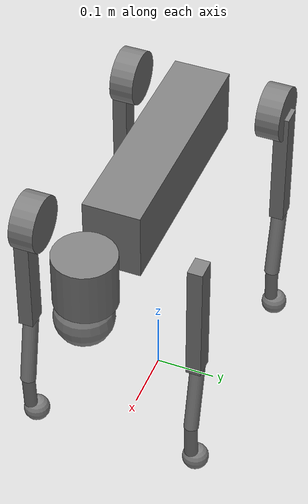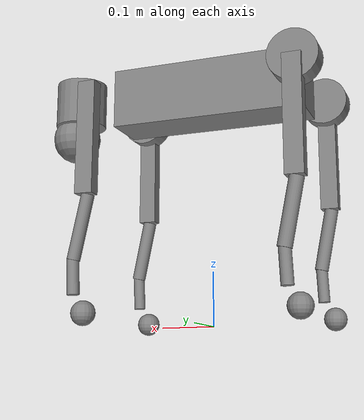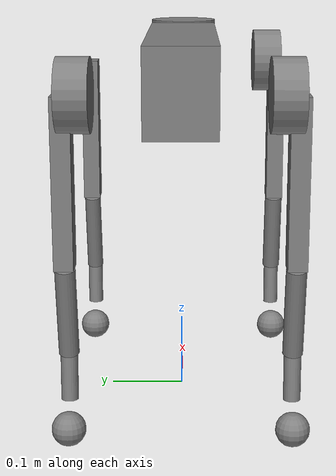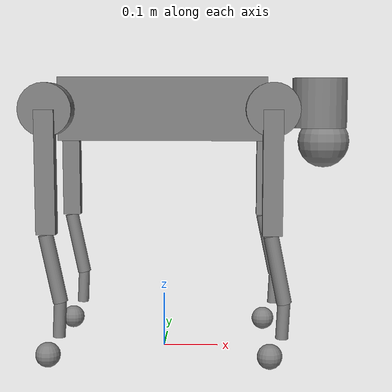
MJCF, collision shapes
<mujoco model="go2">
    <compiler angle="radian" meshdir="assets" autolimits="true"/>

    <option cone="elliptic" impratio="100"/>

    <default>
        <default class="go2">
        <geom friction="0.6" contype="0" conaffinity="0" type="mesh"/>
        <joint axis="0 1 0" damping="0.1" armature="0.01" frictionloss="0.2"/>
        <motor ctrlrange="-23.7 23.7" forcerange="-23.7 23.7"/>
        <default class="go2/abduction">
            <joint axis="1 0 0" range="-1.0472 1.0472"/>
        </default>
        <default class="go2/hip">
            <default class="go2/front_hip">
            <joint range="-1.5708 3.4907"/>
            </default>
            <default class="go2/back_hip">
            <joint range="-0.5236 4.5379"/>
            </default>
        </default>
        <default class="go2/knee">
            <joint range="-2.7227 -0.83776"/>
            <motor ctrlrange="-45.43 45.43" forcerange="-45.43 45.43"/>
        </default>
        <default class="go2/foot">
            <site pos="-0.002 0 -0.213"/>
        </default>
        <default class="go2/collision">
            <geom group="3" contype="0" conaffinity="1"/>
            <default class="go2/collision/foot">
            <geom type="sphere" size="0.022" pos="-0.002 0 -0.213" solimp="0.9 .95 0.022" condim="6" friction="0.8 0.02 0.01"/>
            </default>
        </default>
        </default>
    </default>

    <asset>
        <material name="metal" rgba=".9 .95 .95 1"/>
        <material name="black" rgba="0 0 0 1"/>
        <material name="white" rgba="1 1 1 1"/>
        <material name="gray" rgba="0.671705 0.692426 0.774270 1"/>
        <mesh file="base_0.obj"/>
        <mesh file="base_1.obj"/>
        <mesh file="base_2.obj"/>
        <mesh file="base_3.obj"/>
        <mesh file="base_4.obj"/>
        <mesh file="hip_0.obj"/>
        <mesh file="hip_1.obj"/>
        <mesh file="thigh_0.obj"/>
        <mesh file="thigh_1.obj"/>
        <mesh file="thigh_mirror_0.obj"/>
        <mesh file="thigh_mirror_1.obj"/>
        <mesh file="calf_0.obj"/>
        <mesh file="calf_1.obj"/>
        <mesh file="calf_mirror_0.obj"/>
        <mesh file="calf_mirror_1.obj"/>
        <mesh file="foot.obj"/>
    </asset>

    <worldbody>
        <body name="base_link" pos="0 0 0.445" childclass="go2">
            <inertial pos="0.021112 0 -0.005366" quat="-0.000543471 0.713435 -0.00173769 0.700719"
                mass="6.921"
                diaginertia="0.107027 0.0980771 0.0244531"/>
            <freejoint/>
            <geom mesh="base_0" material="black" class="go2"/>
            <geom mesh="base_1" material="black" class="go2"/>
            <geom mesh="base_2" material="black" class="go2"/>
            <geom mesh="base_3" material="white" class="go2"/>
            <geom mesh="base_4" material="gray" class="go2"/>
            <geom size="0.1881 0.04675 0.057" type="box" class="go2/collision"/>
            <geom size="0.05 0.045" pos="0.285 0 0.01" type="cylinder" class="go2/collision"/>
            <geom size="0.047" pos="0.293 0 -0.06" type="sphere" class="go2/collision"/>
            <site name="imu" pos="-0.02557 0 0.04232"/>
            <body name="front_right_hip" pos="0.1934 -0.0465 0">
                <inertial pos="-0.0054 -0.00194 -0.000105" quat="0.498237 0.505462 0.499245 0.497014"
                    mass="0.678"
                    diaginertia="0.00088403 0.000596003 0.000479967"/>
                <joint name="front_right_hip_joint" class="go2/abduction"/>
                <geom mesh="hip_0" material="metal" class="go2" quat="4.63268e-05 1 0 0"/>
                <geom mesh="hip_1" material="gray" class="go2" quat="4.63268e-05 1 0 0"/>
                <geom size="0.046 0.02" pos="0 -0.08 0" quat="0.707107 0.707107 0 0" type="cylinder"
                    class="go2/collision"/>
                <body name="front_right_thigh" pos="0 -0.0955 0">
                    <inertial pos="-0.00374 0.0223 -0.0327" quat="0.551623 -0.0200632 0.0847635 0.829533"
                        mass="1.152"
                        diaginertia="0.00594973 0.00584149 0.000878787"/>
                    <joint name="front_right_thigh_joint" class="go2/front_hip"/>
                    <geom mesh="thigh_mirror_0" material="metal" class="go2"/>
                    <geom mesh="thigh_mirror_1" material="gray" class="go2"/>
                    <geom size="0.1065 0.01225 0.017" pos="0 0 -0.1065" quat="0.707107 0 0.707107 0"
                        type="box" class="go2/collision"/>
                    <body name="front_right_calf" pos="0 0 -0.213">
                        <inertial pos="0.00629595 0.000622121 -0.141417"
                        quat="0.703508 -0.00450087 0.00154099 0.710672"
                        mass="0.241352" diaginertia="0.0014901 0.00146356 5.31397e-05"/>
                        <joint name="front_right_calf_joint" class="go2/knee"/>
                        <geom mesh="calf_mirror_0" material="gray" class="go2"/>
                        <geom mesh="calf_mirror_1" material="black" class="go2"/>
                        <geom size="0.013 0.06" pos="0.01 0 -0.06" quat="0.995004 0 -0.0998334 0"
                            type="cylinder" class="go2/collision"/>
                        <geom size="0.011 0.0325" pos="0.02 0 -0.148" quat="0.999688 0 0.0249974 0"
                            type="cylinder" class="go2/collision"/>
                        <geom pos="0 0 -0.213" mesh="foot" class="go2" material="black"/>
                        <geom name="front_right" class="go2/collision/foot"/>
                        <site name="front_right_foot" class="go2/foot"/>
                    </body>
                </body>
            </body>
            <body name="front_left_hip" pos="0.1934 0.0465 0">
                <inertial pos="-0.0054 0.00194 -0.000105" quat="0.497014 0.499245 0.505462 0.498237"
                mass="0.678"
                diaginertia="0.00088403 0.000596003 0.000479967"/>
                <joint name="front_left_hip_joint" class="go2/abduction"/>
                <geom mesh="hip_0" material="metal" class="go2"/>
                <geom mesh="hip_1" material="gray" class="go2"/>
                <body name="front_left_thigh" pos="0 0.0955 0">
                    <inertial pos="-0.00374 -0.0223 -0.0327" quat="0.829533 0.0847635 -0.0200632 0.551623"
                        mass="1.152"
                        diaginertia="0.00594973 0.00584149 0.000878787"/>
                    <joint name="front_left_thigh_joint" class="go2/front_hip"/>
                    <geom mesh="thigh_0" material="metal" class="go2"/>
                    <geom mesh="thigh_1" material="gray" class="go2"/>
                    <geom size="0.1065 0.01225 0.017" pos="0 0 -0.1065" quat="0.707107 0 0.707107 0"
                        type="box" class="go2/collision"/>
                    <body name="front_left_calf" pos="0 0 -0.213">
                        <inertial pos="0.00629595 -0.000622121 -0.141417"
                        quat="0.710672 0.00154099 -0.00450087 0.703508"
                        mass="0.241352" diaginertia="0.0014901 0.00146356 5.31397e-05"/>
                        <joint name="front_left_calf_joint" class="go2/knee"/>
                        <geom mesh="calf_0" material="gray" class="go2"/>
                        <geom mesh="calf_1" material="black" class="go2"/>
                        <geom size="0.012 0.06" pos="0.008 0 -0.06" quat="0.994493 0 -0.104807 0"
                            type="cylinder" class="go2/collision"/>
                        <geom size="0.011 0.0325" pos="0.02 0 -0.148" quat="0.999688 0 0.0249974 0"
                            type="cylinder" class="go2/collision"/>
                        <geom pos="0 0 -0.213" mesh="foot" class="go2" material="black"/>
                        <geom name="front_left" class="go2/collision/foot"/>
                        <site name="front_left_foot" class="go2/foot"/>
                    </body>
                </body>
            </body>
            <body name="hind_right_hip" pos="-0.1934 -0.0465 0">
                <inertial pos="0.0054 -0.00194 -0.000105" quat="0.499245 0.497014 0.498237 0.505462"
                mass="0.678"
                diaginertia="0.00088403 0.000596003 0.000479967"/>
                <joint name="hind_right_hip_joint" class="go2/abduction"/>
                <geom mesh="hip_0" material="metal" class="go2" quat="2.14617e-09 4.63268e-05 4.63268e-05 -1"/>
                <geom mesh="hip_1" material="gray" class="go2" quat="2.14617e-09 4.63268e-05 4.63268e-05 -1"/>
                <geom size="0.046 0.02" pos="0 -0.08 0" quat="0.707107 0.707107 0 0" type="cylinder"
                    class="go2/collision"/>
                <body name="hind_right_thigh" pos="0 -0.0955 0">
                    <inertial pos="-0.00374 0.0223 -0.0327" quat="0.551623 -0.0200632 0.0847635 0.829533"
                        mass="1.152"
                        diaginertia="0.00594973 0.00584149 0.000878787"/>
                    <joint name="hind_right_thigh_joint" class="go2/back_hip"/>
                    <geom mesh="thigh_mirror_0" material="metal" class="go2"/>
                    <geom mesh="thigh_mirror_1" material="gray" class="go2"/>
                    <geom size="0.1065 0.01225 0.017" pos="0 0 -0.1065" quat="0.707107 0 0.707107 0"
                        type="box" class="go2/collision"/>
                    <body name="hind_right_calf" pos="0 0 -0.213">
                        <inertial pos="0.00629595 0.000622121 -0.141417"
                        quat="0.703508 -0.00450087 0.00154099 0.710672"
                        mass="0.241352" diaginertia="0.0014901 0.00146356 5.31397e-05"/>
                        <joint name="hind_right_calf_joint" class="go2/knee"/>
                        <geom mesh="calf_mirror_0" material="gray" class="go2"/>
                        <geom mesh="calf_mirror_1" material="black" class="go2"/>
                        <geom size="0.013 0.06" pos="0.01 0 -0.06" quat="0.995004 0 -0.0998334 0"
                            type="cylinder" class="go2/collision"/>
                        <geom size="0.011 0.0325" pos="0.02 0 -0.148" quat="0.999688 0 0.0249974 0"
                            type="cylinder" class="go2/collision"/>
                        <geom pos="0 0 -0.213" mesh="foot" class="go2" material="black"/>
                        <geom name="hind_right" class="go2/collision/foot"/>
                        <site name="hind_right_foot" class="go2/foot"/>
                    </body>
                </body>
            </body>
            <body name="hind_left_hip" pos="-0.1934 0.0465 0">
                <inertial pos="0.0054 0.00194 -0.000105" quat="0.505462 0.498237 0.497014 0.499245"
                mass="0.678"
                diaginertia="0.00088403 0.000596003 0.000479967"/>
                <joint name="hind_left_hip_joint" class="go2/abduction"/>
                <geom mesh="hip_0" material="metal" class="go2" quat="4.63268e-05 0 1 0"/>
                <geom mesh="hip_1" material="gray" class="go2" quat="4.63268e-05 0 1 0"/>
                <geom size="0.046 0.02" pos="0 0.08 0" quat="0.707107 0.707107 0 0" type="cylinder"
                    class="go2/collision"/>
                <body name="hind_left_thigh" pos="0 0.0955 0">
                    <inertial pos="-0.00374 -0.0223 -0.0327" quat="0.829533 0.0847635 -0.0200632 0.551623"
                        mass="1.152"
                        diaginertia="0.00594973 0.00584149 0.000878787"/>
                    <joint name="hind_left_thigh_joint" class="go2/back_hip"/>
                    <geom mesh="thigh_0" material="metal" class="go2"/>
                    <geom mesh="thigh_1" material="gray" class="go2"/>
                    <geom size="0.1065 0.01225 0.017" pos="0 0 -0.1065" quat="0.707107 0 0.707107 0"
                        type="box" class="go2/collision"/>
                    <body name="hind_left_calf" pos="0 0 -0.213">
                        <inertial pos="0.00629595 -0.000622121 -0.141417"
                            quat="0.710672 0.00154099 -0.00450087 0.703508"
                            mass="0.241352" diaginertia="0.0014901 0.00146356 5.31397e-05"/>
                        <joint name="hind_left_calf_joint" class="go2/knee"/>
                        <geom mesh="calf_0" material="gray" class="go2"/>
                        <geom mesh="calf_1" material="black" class="go2"/>
                        <geom size="0.013 0.06" pos="0.01 0 -0.06" quat="0.995004 0 -0.0998334 0"
                            type="cylinder" class="go2/collision"/>
                        <geom size="0.011 0.0325" pos="0.02 0 -0.148" quat="0.999688 0 0.0249974 0"
                            type="cylinder" class="go2/collision"/>
                        <geom pos="0 0 -0.213" mesh="foot" class="go2" material="black"/>
                        <geom name="hind_left" class="go2/collision/foot"/>
                        <site name="hind_left_foot" class="go2/foot"/>
                    </body>
                </body>
            </body>
        </body>
    </worldbody>

    <actuator>
        <motor class="go2/abduction" name="front_right_hip" joint="front_right_hip_joint"/>
        <motor class="go2/hip" name="front_right_thigh" joint="front_right_thigh_joint"/>
        <motor class="go2/knee" name="front_right_calf" joint="front_right_calf_joint"/>
        <motor class="go2/abduction" name="front_left_hip" joint="front_left_hip_joint"/>
        <motor class="go2/hip" name="front_left_thigh" joint="front_left_thigh_joint"/>
        <motor class="go2/knee" name="front_left_calf" joint="front_left_calf_joint"/>
        <motor class="go2/abduction" name="hind_right_hip" joint="hind_right_hip_joint"/>
        <motor class="go2/hip" name="hind_right_thigh" joint="hind_right_thigh_joint"/>
        <motor class="go2/knee" name="hind_right_calf" joint="hind_right_calf_joint"/>
        <motor class="go2/abduction" name="hind_left_hip" joint="hind_left_hip_joint"/>
        <motor class="go2/hip" name="hind_left_thigh" joint="hind_left_thigh_joint"/>
        <motor class="go2/knee" name="hind_left_calf" joint="hind_left_calf_joint"/>
    </actuator>

    <sensor>
        <!-- IMU: -->
        <gyro name="imu_gyro" site="imu"/>
        <framequat name="imu_orientation" objtype="site" objname="imu"/>
        <accelerometer name="imu_acceleration" site="imu"/>

        <!-- State Estimator: -->
        <velocimeter name="local_linvel" site="imu"/>
        <framepos name="imu_position" objtype="site" objname="imu"/>
        <framelinvel name="fr_global_linvel" objtype="site" objname="front_right_foot"/>
        <framelinvel name="fl_global_linvel" objtype="site" objname="front_left_foot"/>
        <framelinvel name="hr_global_linvel" objtype="site" objname="hind_right_foot"/>
        <framelinvel name="hl_global_linvel" objtype="site" objname="hind_left_foot"/>
        <framepos name="fr_pos" objtype="site" objname="front_right_foot" reftype="site" refname="imu"/>
        <framepos name="fl_pos" objtype="site" objname="front_left_foot" reftype="site" refname="imu"/>
        <framepos name="hr_pos" objtype="site" objname="hind_right_foot" reftype="site" refname="imu"/>
        <framepos name="hl_pos" objtype="site" objname="hind_left_foot" reftype="site" refname="imu"/>

        <!-- Globals: -->
        <framezaxis name="upvector" objtype="site" objname="imu"/>
        <framexaxis name="forwardvector" objtype="site" objname="imu"/>
        <framelinvel name="global_linvel" objtype="site" objname="imu"/>
        <frameangvel name="global_angvel" objtype="site" objname="imu"/>
    </sensor>

    <keyframe>
        <key
            name="home"
            qpos="0 0 0.285 1 0 0 0 0 0.9 -1.8 0 0.9 -1.8 0 0.9 -1.8 0 0.9 -1.8"
            ctrl="0 0 0 0 0 0 0 0 0 0 0 0"
        />
        <key
            name="prone"
            qpos="-0.0370514 -0.000280036 0.103448 0.99994 0.00914519 -0.00599487 0.000809916 -0.0467645 1.13609 -2.73395 -0.00305751 1.13607 -2.73209 -0.0964696 1.13738 -2.73258 0.0431798 1.13649 -2.73249"
            ctrl="0 0 0 0 0 0 0 0 0 0 0 0"
        />
    </keyframe>

</mujoco>
